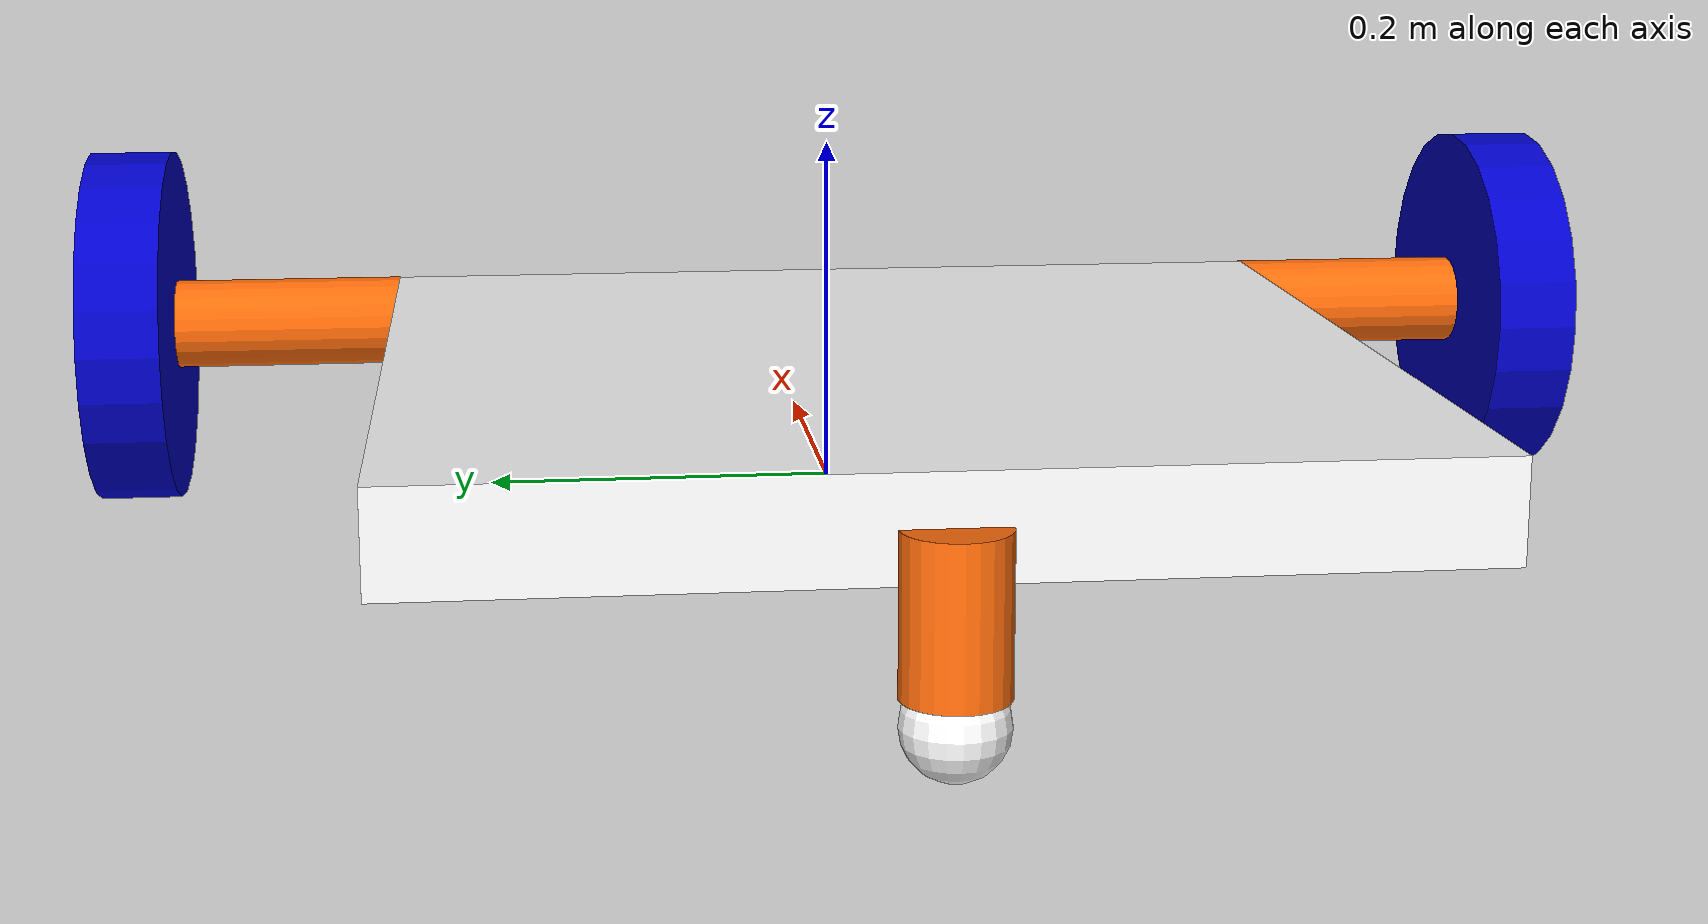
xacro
<?xml version="1.0"?>
<!--일단 이그니션으로 업그레이드 부터 하시죠-->
<robot name="rHomMover_5"
    xmlns:xacro="http://ros.org/wiki/xacro">

    <!-- Macro -->
    <xacro:include filename="macros.xacro"/>

    <!-- Colors -->
    <material name="black">
      <color rgba="0.0 0.0 0.0 1.0"/>
    </material>

    <material name="dark">
        <color rgba="0.3 0.3 0.3 1.0"/>
    </material>

    <material name="light_black">
        <color rgba="0.4 0.4 0.4 1.0"/>
    </material>

    <material name="blue">
        <color rgba="0.0 0.0 0.8 1.0"/>
    </material>

    <material name="green">
        <color rgba="0.0 0.8 0.0 1.0"/>
    </material>

    <material name="grey">
        <color rgba="0.5 0.5 0.5 1.0"/>
    </material>

    <material name="orange">
        <color rgba="1.0 0.4235 0.0392 1.0"/>
    </material>

    <material name="brown">
        <color rgba="0.8706 0.8118 0.7647 1.0"/>
    </material>

    <material name="red">
        <color rgba="0.8 0.0 0.0 1.0"/>
    </material>

    <material name="white">
        <color rgba="1.0 1.0 1.0 1.0"/>
    </material>

    <!-- 주요 기하 변수 -->
    <xacro:property name ="W_B" value="0.5"/>
    <xacro:property name ="L_B" value="0.5"/>
    <xacro:property name ="T_B" value="0.05"/>
    <xacro:property name ="L_a" value="0.15"/>
    <xacro:property name ="D_a" value="0.05"/>
    <xacro:property name ="W_w" value="0.045"/>
    <xacro:property name ="D_w" value="0.2"/>
    <xacro:property name ="H" value="${D_w /2}"/>

    <!-- BASE -->
    <!-- 이거 왜 이렇게 분리하는지는 모르겠는데 일단 참고 사이트에서 이케 하길래 따라함 -->
    <link name="base_link">
    </link>

    <!-- BODY LINK -->
    <joint name="body_joint" type="fixed">
        <parent link="base_link"/>
        <child link="body"/>
    </joint>

    <link name="body">
        <visual>
            <origin xyz="-${L_B/2} 0 ${H}"/>
            <geometry>
                <box size="${L_B} ${W_B} ${T_B}"/>
            </geometry>
            <material name="white"/>
        </visual>
        <collision>
            <origin xyz="-${L_B/2} 0 ${H}"/>
            <geometry>
                <box size="${L_B} ${W_B} ${T_B}"/>
            </geometry>
        </collision>
        <xacro:inertial_box mass="0.5" x = "${L_B}" y= "${W_B}" z="${T_B}">
            <origin xyz="-${L_B/2} 0 ${H}" rpy="0 0 0"/>
        </xacro:inertial_box>
    </link>
    <gazebo reference="body">
        <material>Gazebo/White</material>
    </gazebo>

    <!-- 오른쪽 팔+바퀴 fixed 버전 -->
    <joint name="right_arm_joint" type="fixed">
        <parent link="body"/>
        <child link="right_arm"/>
        <origin xyz="0 -${W_B/2} ${D_w/2}"/>
    </joint>

    <!-- 오른쪽 팔+바퀴 R 조인트 버전 -->

    <link name="right_arm">
        <visual>
            <origin xyz = "0 -${L_a/2} 0" rpy="${pi/2} 0 0"/>
            <geometry>
                <cylinder radius="${D_a/2}" length="${L_a}"/>
            </geometry>
            <material name="orange"/>
        </visual>
        <xacro:inertial_cylinder mass="0.1" radius="${D_a/2}" length="${L_a}">
            <origin xyz = "0 -${L_a/2} 0" rpy="${pi/2} 0 0"/>
        </xacro:inertial_cylinder>
    </link>
    <gazebo reference="right_arm">
        <material>Gazebo/Black</material>
    </gazebo>

    <joint name="right_wheel_joint" type="continuous">
        <parent link ="right_arm"/>
        <child link="right_wheel"/>
        <origin xyz="0 -${L_a} 0"/>
        <axis xyz = "0 1 0"/>
    </joint>

    <link name="right_wheel">
        <visual>
            <origin xyz="0 0 0" rpy="${pi/2} 0 0"/>
            <geometry>
                <cylinder radius="${D_w/2}" length="${W_w}"/>
            </geometry>
            <material name="blue"/>
        </visual>
        <collision>
            <origin xyz="0 0 0" rpy="${pi/2} 0 0"/>
            <geometry>
                <cylinder radius="${D_w/2}" length="${W_w}"/>
            </geometry>
        </collision>
        <xacro:inertial_cylinder mass="0.2" radius="${D_w/2}" length="${W_w}">
            <origin xyz="0 0 0" rpy="${pi/2} 0 0"/>
        </xacro:inertial_cylinder>
    </link>

    <!--오른쪽바퀴에 마찰력 적용-->
    <gazebo reference="right_wheel">
        <mu1>1.5</mu1>
        <mu2>0.8</mu2>
    </gazebo>

    <!-- 왼쪽 팔+바퀴 fixed 버전, 나중에 바꿔줘야 함.  -->
    <joint name="left_arm_joint" type="fixed">
        <parent link="body"/>
        <child link="left_arm"/>
        <origin xyz="0 ${W_B/2} ${D_w/2}"/>
    </joint>
    <!-- 왼쪽 팔+바퀴 R 조인트-->

    <link name="left_arm">
        <visual>
            <origin xyz = "0 ${L_a/2} 0" rpy="-${pi/2} 0 0"/>
            <geometry>
                <cylinder radius="${D_a/2}" length="${L_a}"/>
            </geometry>
            <material name="orange"/>
        </visual>
        <xacro:inertial_cylinder mass="0.1" radius="${D_a/2}" length="${L_a}">
            <origin xyz = "0 ${L_a/2} 0" rpy="-${pi/2} 0 0"/>
        </xacro:inertial_cylinder>
    </link>
    <gazebo reference="left_arm">
        <material>Gazebo/Black</material>
    </gazebo>

    <joint name="left_wheel_joint" type="continuous">
        <parent link ="left_arm"/>
        <child link="left_wheel"/>
        <origin xyz="0 ${L_a} 0"/>
        <axis xyz = "0 1 0"/>
    </joint>

    <link name="left_wheel">
        <visual>
            <origin xyz="0 0 0" rpy="-${pi/2} 0 0"/>
            <geometry>
                <cylinder radius="${D_w/2}" length="${W_w}"/>
            </geometry>
            <material name="blue"/>
        </visual>
        <collision>
            <origin xyz="0 0 0" rpy="-${pi/2} 0 0"/>
            <geometry>
                <cylinder radius="${D_w/2}" length="${W_w}"/>
            </geometry>
        </collision>
        <xacro:inertial_cylinder mass="0.2" radius="${D_w/2}" length="${W_w}">
            <origin xyz="0 0 0" rpy="-${pi/2} 0 0"/>
        </xacro:inertial_cylinder>
    </link>

    <!--왼쪽바퀴에 마찰력 적용-->
    <gazebo reference="left_wheel">
        <mu1>1.5</mu1>
        <mu2>0.8</mu2>
    </gazebo>

    <!-- 뒤쪽 받침대 -->
    <joint name="tail_joint" type="fixed">
        <parent link="body"/>
        <child link="tail"/>
        <origin xyz="-${L_B} 0 ${D_w/2}"/>
    </joint>

    <link name="tail">
        <visual>
            <origin xyz = "0 0 -${H/2-D_a/4}" rpy="0 0 0"/>
            <geometry>
                <cylinder radius="${D_a/2}" length="${H-D_a/2}"/>
            </geometry>
            <material name="orange"/>
        </visual>
        <collision>
            <origin xyz = "0 0 -${H/2-D_a/4}" rpy="0 0 0"/>
            <geometry>
                <cylinder radius="${D_a/2}" length="${H-D_a/2}"/>
            </geometry>
        </collision>
        <xacro:inertial_cylinder mass="0.1" radius="${D_a/2}" length="${H-D_a/2}">
            <origin xyz = "0 0 -${H/2-D_a/4}" rpy="0 0 0"/>
        </xacro:inertial_cylinder>
    </link>
    <gazebo reference="tail">
        <material>Gazebo/Black</material>
    </gazebo>

    <joint name="tail_caster_joint" type="fixed">
        <parent link ="tail"/>
        <child link="caster"/>
        <origin xyz="0 0 -${H-D_a/4}"/>
    </joint>

    <link name="caster">
        <visual>
            <origin xyz="0 0 0" rpy="0 0 0"/>
            <geometry>
                <sphere radius="${D_a/2}"/>
            </geometry>
            <material name="white"/>
        </visual>
        <collision>
            <origin xyz="0 0 0" rpy="0 0 0"/>
            <geometry>
                <sphere radius="${D_a/2}"/>
            </geometry>
        </collision>
        <xacro:inertial_sphere mass="0.05" radius="${D_a/2}">
            <origin xyz="0 0 0" rpy="0 0 0"/>
        </xacro:inertial_sphere>
    </link>

    <!--캐스터휠에 마찰력 적용-->
    <gazebo reference="caster">
        <mu1>0.01</mu1>
        <mu2>0.01</mu2>
    </gazebo>

    <!-- 바퀴 트랜스미션 설정 -->
    <!--어깨에 바퀴는 나중에 붙여봅시다-->

    <!-- ros2_control 블럭 -->
    <ros2_control name="rHomMover_hw" type="system">
        <hardware>
            <plugin>gz_ros2_control/GazeboSimSystem</plugin>
        </hardware>
        <joint name="left_wheel_joint">
            <command_interface name="velocity"/>
            <state_interface name="velocity"/>
            <state_interface name="position"/>
        </joint>
        <joint name="right_wheel_joint">
            <command_interface name="velocity"/>
            <state_interface name="velocity"/>
            <state_interface name="position"/>
        </joint>
    </ros2_control>

    <gazebo>
        <plugin filename="gz_ros2_control-system"
                name="gz_ros2_control::GazeboSimROS2ControlPlugin">
            <!-- robot_description을 어디서 읽을지 -->
            <robot_param>robot_description</robot_param>
            <robot_param_node>robot_state_publisher</robot_param_node>

            <!-- 컨트롤러 설정 -->
            <parameters>$(find rHomMover_gazebo_sim)/config/diff_drive_controller.yaml</parameters>

        </plugin>
    </gazebo>
</robot>
